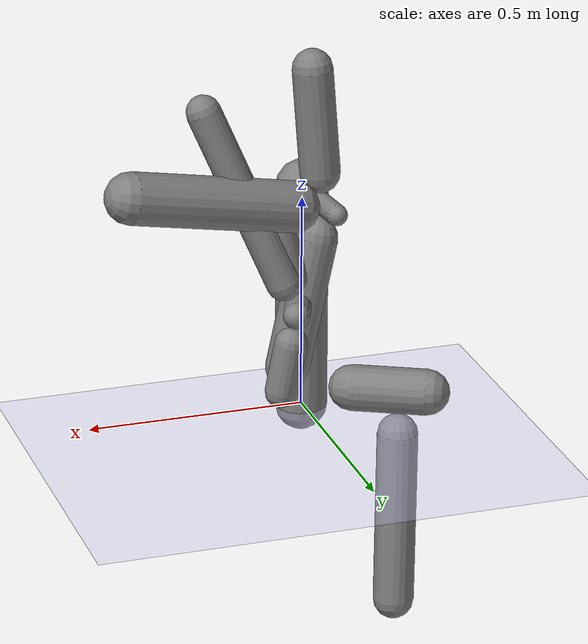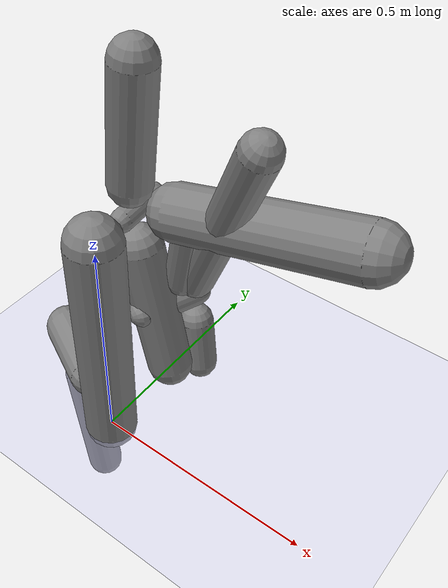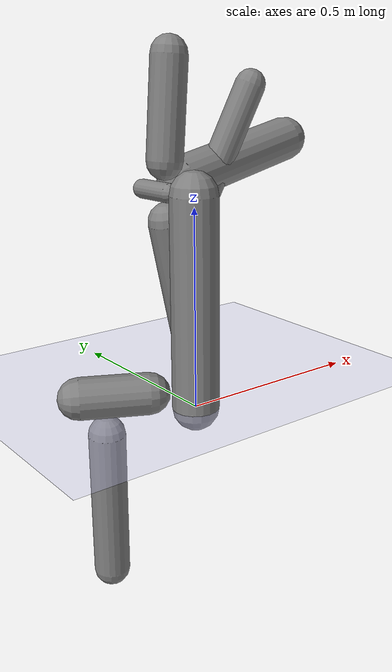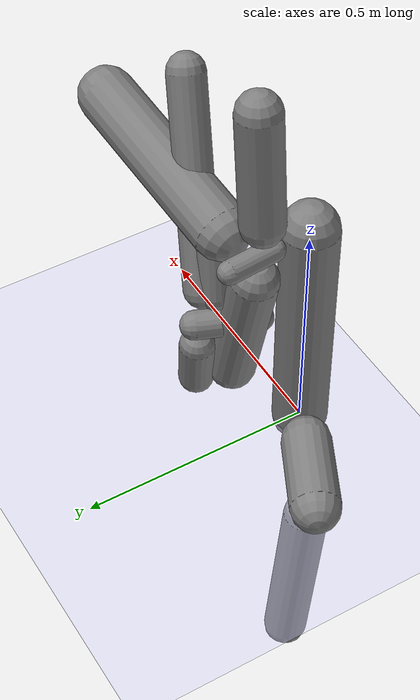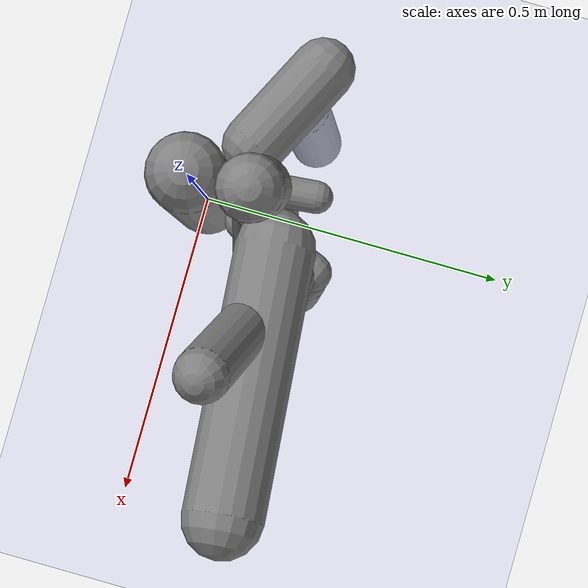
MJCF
<?xml version='1.0' encoding='UTF-8'?>
<mujoco model="robot_model">
  <worldbody>
    <light name="light" pos="0 -3 10" dir="0 0.5 -1" diffuse=".8 .8 .8" specular="0.1 0.1 0.1"/>
    <geom name="floor" type="plane" size="10.0 10.0 0.1" pos="0 0 0" rgba="0.8 0.8 1 1" contype="2" conaffinity="1"/>
    <body name="limb0" pos="0 0 0">
      <geom name="limb0_geom" type="capsule" fromto="0 0 0 0 0 0.5287168010920859" size="0.05911549693530244" density="867.9861441805426" contype="1" conaffinity="2"/>
      <site type="sphere" size="0.01" name="limb0_site0" pos="0.033762269619172426 0.08704296881544198 0.3066399785966476" quat="0.7071067811865476 -0.659251136275221 0.2557106554679132 0.0"/>
      <site type="sphere" size="0.01" name="limb0_site1" pos="-0.10366340335163118 0.05211856733947023 0.04582987187155055" quat="0.7071067811865476 -0.31762558650974443 -0.6317546887790709 0.0"/>
      <site type="sphere" size="0.01" name="limb0_site2" pos="-0.008012878921973837 0.08653637760959952 0.5238233781273788" quat="0.7071067811865476 -0.7040947951636604 -0.06519600772626435 0.0"/>
      <freejoint name="limb0_root"/>
      <body name="limb1" pos="0.033762269619172426 0.08704296881544198 0.3066399785966476" quat="0.7071067811865476 -0.659251136275221 0.2557106554679132 0.0">
        <geom name="limb1_geom" type="capsule" fromto="0 0 0 0 0 0.1290633394593284" size="0.030246000857115693" density="414.3131367175802" contype="1" conaffinity="2"/>
        <site type="sphere" size="0.01" name="limb1_site0" pos="-0.010626060213625646 -0.06922154922579801 0.08307868621995733" quat="0.7071067811865476 0.6989198133433969 -0.10728976892523912 0.0"/>
        <site type="sphere" size="0.01" name="limb1_site1" pos="0.03723526274639879 0.06082222089574137 0.12196803698157245" quat="0.7071067811865476 -0.6030694433042535 0.3691981128780288 0.0"/>
        <site type="sphere" size="0.01" name="limb1_site2" pos="0.003479078506007658 -0.07283429635948373 0.10801875356310386" quat="0.7071067811865476 0.7063014598820836 0.033737927743673825 0.0"/>
        <body name="limb2" pos="-0.010626060213625646 -0.06922154922579801 0.08307868621995733" quat="0.7071067811865476 0.6989198133433969 -0.10728976892523912 0.0">
          <geom name="limb2_geom" type="capsule" fromto="0 0 0 0 0 0.1929245901142124" size="0.0357863918828384" density="999.004580003148" contype="1" conaffinity="2"/>
          <joint name="joint_limb1_limb2_0" type="hinge" axis="0 1 0" range="-28.28085758964947 28.28085758964947" damping="5.0"/>
        </body>
        <body name="limb3" pos="0.03723526274639879 0.06082222089574137 0.12196803698157245" quat="0.7071067811865476 -0.6030694433042535 0.3691981128780288 0.0">
          <geom name="limb3_geom" type="capsule" fromto="0 0 0 0 0 0.1162470247490981" size="0.03706884574920964" density="555.2219639206346" contype="1" conaffinity="2"/>
          <joint name="joint_limb1_limb3_0" type="hinge" axis="0 1 0" range="-105.20523324627753 105.20523324627753" damping="5.0"/>
        </body>
        <body name="limb4" pos="0.003479078506007658 -0.07283429635948373 0.10801875356310386" quat="0.7071067811865476 0.7063014598820836 0.033737927743673825 0.0">
          <geom name="limb4_geom" type="capsule" fromto="0 0 0 0 0 0.4296007230599677" size="0.038671340793770534" density="944.54906045617" contype="1" conaffinity="2"/>
          <joint name="joint_limb1_limb4_0" type="hinge" axis="0 1 0" range="-89.12714794406047 89.12714794406047" damping="5.0"/>
        </body>
        <joint name="joint_limb0_limb1_0" type="hinge" axis="0 1 0" range="-117.55329784268204 117.55329784268204" damping="5.0"/>
      </body>
      <body name="limb5" pos="-0.10366340335163118 0.05211856733947023 0.04582987187155055" quat="0.7071067811865476 -0.31762558650974443 -0.6317546887790709 0.0">
        <geom name="limb5_geom" type="capsule" fromto="0 0 0 0 0 0.17162507503319732" size="0.052912285323783545" density="998.5794200649959" contype="1" conaffinity="2"/>
        <site type="sphere" size="0.01" name="limb5_site0" pos="-0.08898651358176672 0.05341752379582118 0.10725553943758616" quat="0.7071067811865476 -0.363931751848505 -0.6062620555473335 0.0"/>
        <body name="limb6" pos="-0.08898651358176672 0.05341752379582118 0.10725553943758616" quat="0.7071067811865476 -0.363931751848505 -0.6062620555473335 0.0">
          <geom name="limb6_geom" type="capsule" fromto="0 0 0 0 0 0.4041946394661" size="0.04687611213910762" density="487.8623088511271" contype="1" conaffinity="2"/>
          <joint name="joint_limb5_limb6_0" type="hinge" axis="0 1 0" range="-89.39845431464953 89.39845431464953" damping="5.0"/>
        </body>
        <joint name="joint_limb0_limb5_0" type="hinge" axis="0 0 1" range="-40.21680939754846 40.21680939754846" damping="5.0"/>
      </body>
      <body name="limb7" pos="-0.008012878921973837 0.08653637760959952 0.5238233781273788" quat="0.7071067811865476 -0.7040947951636604 -0.06519600772626435 0.0">
        <geom name="limb7_geom" type="capsule" fromto="0 0 0 0 0 0.10195976599543025" size="0.02379106713444668" density="658.3366429311827" contype="1" conaffinity="2"/>
        <site type="sphere" size="0.01" name="limb7_site0" pos="0.08565570308514221 -0.009002029951108338 0.058581661492237015" quat="0.7071067811865476 0.07390671756694009 0.7032338139612461 0.0"/>
        <site type="sphere" size="0.01" name="limb7_site1" pos="0.012579496329800077 -0.07195946850719384 0.02309392734164615" quat="0.7071067811865476 0.6965437534581925 0.1217653461308784 0.0"/>
        <site type="sphere" size="0.01" name="limb7_site2" pos="0.010071622474907112 0.07644590464702473 0.02923888641590767" quat="0.7071067811865476 -0.7010486847799976 0.09236201366490202 0.0"/>
        <body name="limb8" pos="0.08565570308514221 -0.009002029951108338 0.058581661492237015" quat="0.7071067811865476 0.07390671756694009 0.7032338139612461 0.0">
          <geom name="limb8_geom" type="capsule" fromto="0 0 0 0 0 0.38660529382632286" size="0.05833637340717567" density="1184.406380142789" contype="1" conaffinity="2"/>
          <joint name="joint_limb7_limb8_0" type="hinge" axis="0 1 0" range="-97.82482261019283 97.82482261019283" damping="5.0"/>
        </body>
        <body name="limb9" pos="0.012579496329800077 -0.07195946850719384 0.02309392734164615" quat="0.7071067811865476 0.6965437534581925 0.1217653461308784 0.0">
          <geom name="limb9_geom" type="capsule" fromto="0 0 0 0 0 0.2425458185506286" size="0.045259660690464665" density="822.6259520455944" contype="1" conaffinity="2"/>
          <joint name="joint_limb7_limb9_0" type="hinge" axis="1 0 0" range="-77.71979489865907 77.71979489865907" damping="5.0"/>
        </body>
        <body name="limb10" pos="0.010071622474907112 0.07644590464702473 0.02923888641590767" quat="0.7071067811865476 -0.7010486847799976 0.09236201366490202 0.0">
          <geom name="limb10_geom" type="capsule" fromto="0 0 0 0 0 0.3080101028818592" size="0.049315443074348604" density="770.2942473034174" contype="1" conaffinity="2"/>
          <joint name="joint_limb7_limb10_0" type="hinge" axis="0 1 0" range="-89.57113528124577 89.57113528124577" damping="5.0"/>
        </body>
        <joint name="joint_limb0_limb7_0" type="hinge" axis="0 1 0" range="-37.31136370204654 37.31136370204654" damping="5.0"/>
      </body>
    </body>
  </worldbody>
  <actuator>
    <position name="position_actuator_joint_limb0_limb1_0" joint="joint_limb0_limb1_0" gear="0.661215842579221" inheritrange="1" forcerange="-18.506124948055835 18.506124948055835" forcelimited="true" kp="100.0"/>
    <position name="position_actuator_joint_limb1_limb2_0" joint="joint_limb1_limb2_0" gear="1.0291151235446077" inheritrange="1" forcerange="-4.836048010488914 4.836048010488914" forcelimited="true" kp="100.0"/>
    <position name="position_actuator_joint_limb1_limb3_0" joint="joint_limb1_limb3_0" gear="1.7332057385966602" inheritrange="1" forcerange="-1.9854280623066667 1.9854280623066667" forcelimited="true" kp="100.0"/>
    <position name="position_actuator_joint_limb1_limb4_0" joint="joint_limb1_limb4_0" gear="1.8694611590103172" inheritrange="1" forcerange="-10.67614933117855 10.67614933117855" forcelimited="true" kp="100.0"/>
    <position name="position_actuator_joint_limb0_limb5_0" joint="joint_limb0_limb5_0" gear="1.906857662953984" inheritrange="1" forcerange="-18.493939177972734 18.493939177972734" forcelimited="true" kp="100.0"/>
    <position name="position_actuator_joint_limb5_limb6_0" joint="joint_limb5_limb6_0" gear="1.378219378640933" inheritrange="1" forcerange="-7.8587686736075915 7.8587686736075915" forcelimited="true" kp="100.0"/>
    <position name="position_actuator_joint_limb0_limb7_0" joint="joint_limb0_limb7_0" gear="1.3795675321975667" inheritrange="1" forcerange="-49.20070235867476 49.20070235867476" forcelimited="true" kp="100.0"/>
    <position name="position_actuator_joint_limb7_limb8_0" joint="joint_limb7_limb8_0" gear="1.8327348303672504" inheritrange="1" forcerange="-29.402187279350848 29.402187279350848" forcelimited="true" kp="100.0"/>
    <position name="position_actuator_joint_limb7_limb9_0" joint="joint_limb7_limb9_0" gear="1.3038483943686714" inheritrange="1" forcerange="-8.0173846614558 8.0173846614558" forcelimited="true" kp="100.0"/>
    <position name="position_actuator_joint_limb7_limb10_0" joint="joint_limb7_limb10_0" gear="0.7932237694648945" inheritrange="1" forcerange="-10.998663383344772 10.998663383344772" forcelimited="true" kp="100.0"/>
  </actuator>
  <contact>
    <pair geom1="limb0_geom" geom2="limb1_geom"/>
    <pair geom1="limb1_geom" geom2="limb2_geom"/>
    <pair geom1="limb1_geom" geom2="limb3_geom"/>
    <pair geom1="limb1_geom" geom2="limb4_geom"/>
    <pair geom1="limb0_geom" geom2="limb5_geom"/>
    <pair geom1="limb5_geom" geom2="limb6_geom"/>
    <pair geom1="limb0_geom" geom2="limb7_geom"/>
    <pair geom1="limb7_geom" geom2="limb8_geom"/>
    <pair geom1="limb7_geom" geom2="limb9_geom"/>
    <pair geom1="limb7_geom" geom2="limb10_geom"/>
  </contact>
</mujoco>
